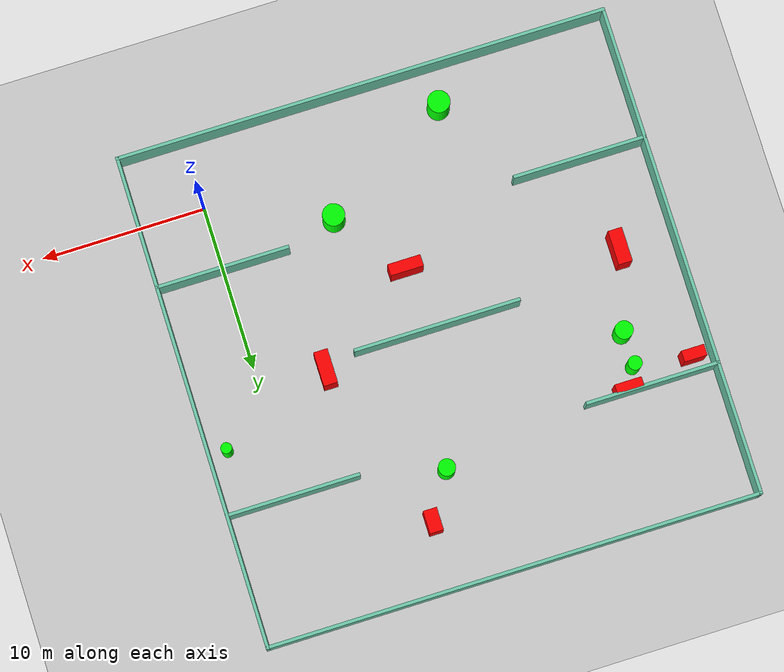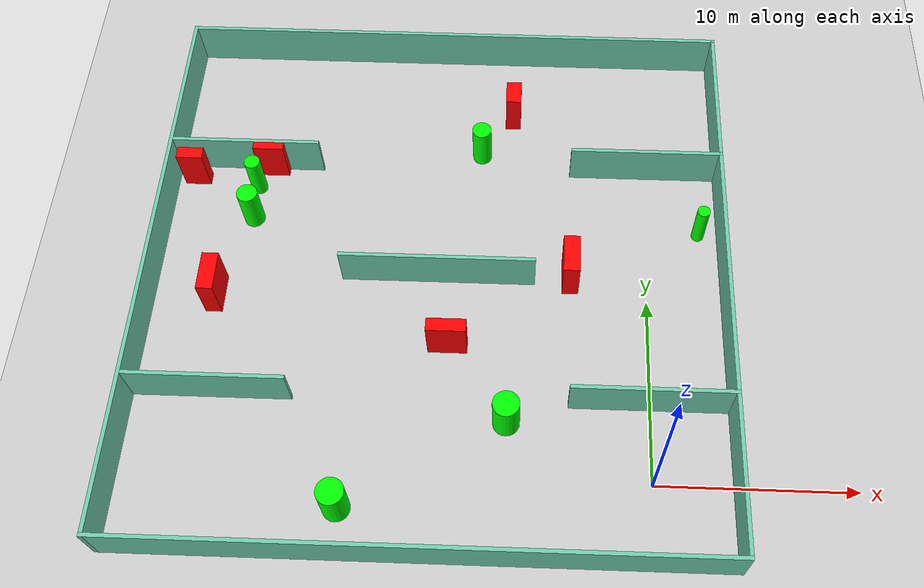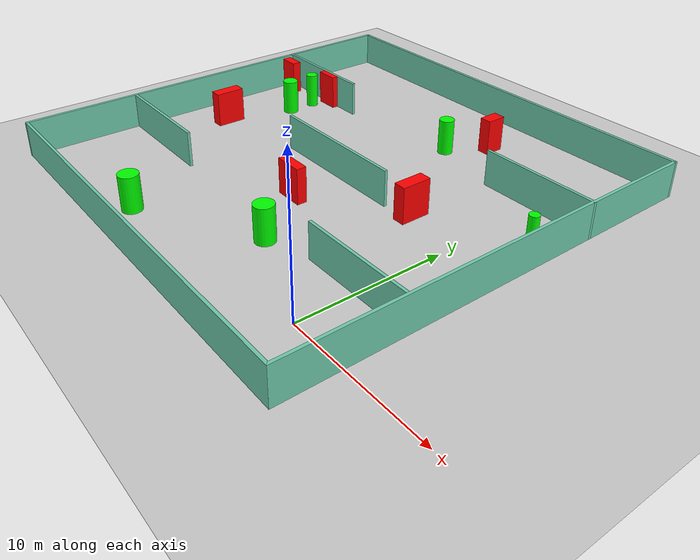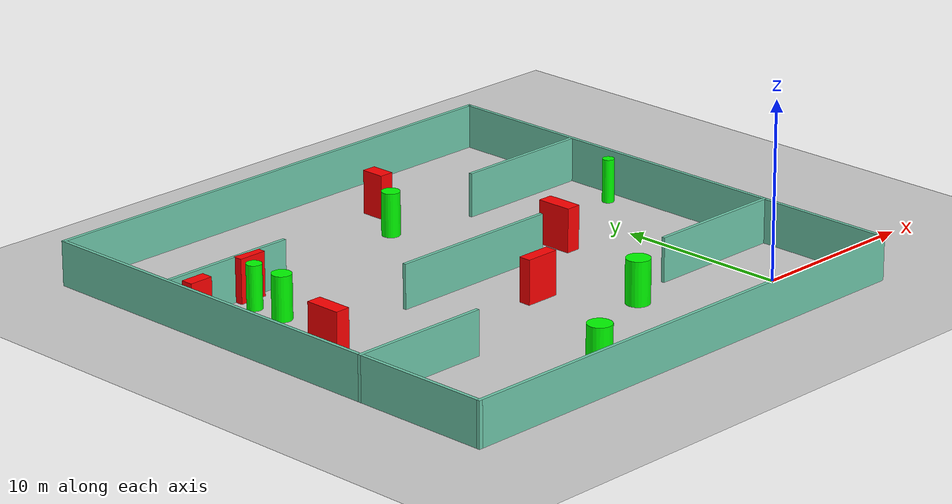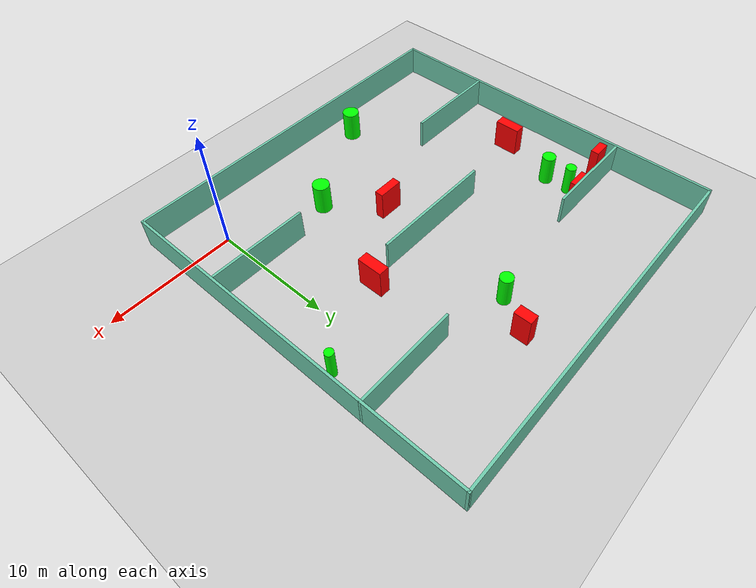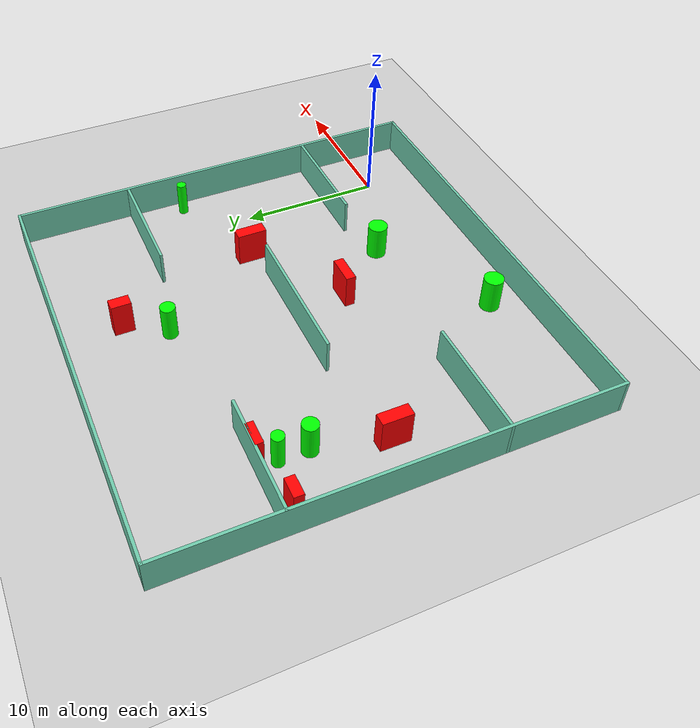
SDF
<sdf version="1.7">
 <world name="default">
  <light name="sun" type="directional">
   <pose>0 0 10 0 -0 0</pose>
   <diffuse>0.8 0.8 0.8 1</diffuse>
   <specular>0.2 0.2 0.2 1</specular>
   <attenuation>
    <range>1000</range>
    <constant>0.9</constant>
    <linear>0.01</linear>
    <quadratic>0.001</quadratic>
   </attenuation>
   <direction>-0.5 0.1 -0.9</direction>
   <spot><inner_angle>0</inner_angle><outer_angle>0</outer_angle><falloff>0</falloff></spot>
  </light>
  <model name="ground_plane">
   <static>1</static>
   <link name="link">
    <collision name="collision">
     <geometry><plane><normal>0 0 1</normal><size>100 100</size></plane></geometry>
     <surface>
      <contact><collide_bitmask>65535</collide_bitmask></contact>
      <friction><ode><mu>100</mu><mu2>50</mu2></ode></friction>
     </surface>
    </collision>
    <visual name="visual">
     <cast_shadows>0</cast_shadows>
     <geometry><plane><normal>0 0 1</normal><size>100 100</size></plane></geometry>
     <material>
      <script><uri>file://media/materials/scripts/gazebo.material</uri><name>Gazebo/Grey</name></script>
     </material>
    </visual>
   </link>
  </model>
  <gravity>0 0 -9.8</gravity>
  <magnetic_field>6e-06 2.3e-05 -4.2e-05</magnetic_field>
  <atmosphere type="adiabatic"/>
  <physics type="ode">
   <max_step_size>0.001</max_step_size>
   <real_time_factor>1</real_time_factor>
   <real_time_update_rate>1000</real_time_update_rate>
  </physics>
  <scene><ambient>0.4 0.4 0.4 1</ambient><background>0.7 0.7 0.7 1</background><shadows>1</shadows></scene>
  <spherical_coordinates>
   <surface_model>EARTH_WGS84</surface_model>
   <latitude_deg>0</latitude_deg>
   <longitude_deg>0</longitude_deg>
   <elevation>0</elevation>
   <heading_deg>0</heading_deg>
  </spherical_coordinates>
  <model name="my_base_walls">
   <link name="Wall_10">
    <collision name="Wall_10_Collision">
     <geometry><box><size>8.2 0.2 2.5</size></box></geometry>
     <pose>0 0 1.25 0 -0 0</pose>
    </collision>
    <visual name="Wall_10_Visual">
     <pose>0 0 1.25 0 -0 0</pose>
     <geometry><box><size>8.2 0.2 2.5</size></box></geometry>
     <material>
      <script><uri>file://media/materials/scripts/gazebo.material</uri><name>Gazebo/Grey</name></script>
      <ambient>0.435294 0.796078 0.67451 1</ambient>
     </material>
     <meta><layer>0</layer></meta>
    </visual>
    <pose>-11 -7 0 0 -0 0</pose>
   </link>
   <link name="Wall_12">
    <collision name="Wall_12_Collision">
     <geometry><box><size>8.2 0.2 2.5</size></box></geometry>
     <pose>0 0 1.25 0 -0 0</pose>
    </collision>
    <visual name="Wall_12_Visual">
     <pose>0 0 1.25 0 -0 0</pose>
     <geometry><box><size>8.2 0.2 2.5</size></box></geometry>
     <material>
      <script><uri>file://media/materials/scripts/gazebo.material</uri><name>Gazebo/Grey</name></script>
      <ambient>0.435294 0.796078 0.67451 1</ambient>
     </material>
     <meta><layer>0</layer></meta>
    </visual>
    <pose>-11 7 0 0 -0 0</pose>
   </link>
   <link name="Wall_14">
    <collision name="Wall_14_Collision">
     <geometry><box><size>8.2 0.2 2.5</size></box></geometry>
     <pose>0 0 1.25 0 -0 0</pose>
    </collision>
    <visual name="Wall_14_Visual">
     <pose>0 0 1.25 0 -0 0</pose>
     <geometry><box><size>8.2 0.2 2.5</size></box></geometry>
     <material>
      <script><uri>file://media/materials/scripts/gazebo.material</uri><name>Gazebo/Grey</name></script>
      <ambient>0.435294 0.796078 0.67451 1</ambient>
     </material>
     <meta><layer>0</layer></meta>
    </visual>
    <pose>11 7 0 0 -0 3.14159</pose>
   </link>
   <link name="Wall_16">
    <collision name="Wall_16_Collision">
     <geometry><box><size>10.2 0.2 2.5</size></box></geometry>
     <pose>0 0 1.25 0 -0 0</pose>
    </collision>
    <visual name="Wall_16_Visual">
     <pose>0 0 1.25 0 -0 0</pose>
     <geometry><box><size>10.2 0.2 2.5</size></box></geometry>
     <material>
      <script><uri>file://media/materials/scripts/gazebo.material</uri><name>Gazebo/Grey</name></script>
      <ambient>0.435294 0.796078 0.67451 1</ambient>
     </material>
     <meta><layer>0</layer></meta>
    </visual>
    <pose>0 0 0 0 -0 3.14159</pose>
   </link>
   <link name="Wall_2">
    <collision name="Wall_2_Collision">
     <geometry><box><size>30.2 0.2 2.5</size></box></geometry>
     <pose>0 0 1.25 0 -0 0</pose>
    </collision>
    <visual name="Wall_2_Visual">
     <pose>0 0 1.25 0 -0 0</pose>
     <geometry><box><size>30.2 0.2 2.5</size></box></geometry>
     <material>
      <script><uri>file://media/materials/scripts/gazebo.material</uri><name>Gazebo/Grey</name></script>
      <ambient>0.435294 0.796078 0.67451 1</ambient>
     </material>
     <meta><layer>0</layer></meta>
    </visual>
    <pose>0 -15 0 0 -0 3.14159</pose>
   </link>
   <link name="Wall_3">
    <collision name="Wall_3_Collision">
     <geometry><box><size>30.2 0.2 2.5</size></box></geometry>
     <pose>0 0 1.25 0 -0 0</pose>
    </collision>
    <visual name="Wall_3_Visual">
     <pose>0 0 1.25 0 -0 0</pose>
     <geometry><box><size>30.2 0.2 2.5</size></box></geometry>
     <material>
      <script><uri>file://media/materials/scripts/gazebo.material</uri><name>Gazebo/Grey</name></script>
      <ambient>0.435294 0.796078 0.67451 1</ambient>
     </material>
     <meta><layer>0</layer></meta>
    </visual>
    <pose>-15 0 0 0 -0 1.5708</pose>
   </link>
   <link name="Wall_4">
    <collision name="Wall_4_Collision">
     <geometry><box><size>30.2 0.2 2.5</size></box></geometry>
     <pose>0 0 1.25 0 -0 0</pose>
    </collision>
    <visual name="Wall_4_Visual">
     <pose>0 0 1.25 0 -0 0</pose>
     <geometry><box><size>30.2 0.2 2.5</size></box></geometry>
     <material>
      <script><uri>file://media/materials/scripts/gazebo.material</uri><name>Gazebo/Grey</name></script>
      <ambient>0.435294 0.796078 0.67451 1</ambient>
     </material>
     <meta><layer>0</layer></meta>
    </visual>
    <pose>0 15 0 0 -0 0</pose>
   </link>
   <link name="Wall_6">
    <collision name="Wall_6_Collision">
     <geometry><box><size>30.2 0.2 2.5</size></box></geometry>
     <pose>0 0 1.25 0 -0 0</pose>
    </collision>
    <visual name="Wall_6_Visual">
     <pose>0 0 1.25 0 -0 0</pose>
     <geometry><box><size>30.2 0.2 2.5</size></box></geometry>
     <material>
      <script><uri>file://media/materials/scripts/gazebo.material</uri><name>Gazebo/Grey</name></script>
      <ambient>0.435294 0.796078 0.67451 1</ambient>
     </material>
     <meta><layer>0</layer></meta>
    </visual>
    <pose>15 0 0 0 -0 1.5708</pose>
   </link>
   <link name="Wall_8">
    <collision name="Wall_8_Collision">
     <geometry><box><size>8.2 0.2 2.5</size></box></geometry>
     <pose>0 0 1.25 0 -0 0</pose>
    </collision>
    <visual name="Wall_8_Visual">
     <pose>0 0 1.25 0 -0 0</pose>
     <geometry><box><size>8.2 0.2 2.5</size></box></geometry>
     <material>
      <script><uri>file://media/materials/scripts/gazebo.material</uri><name>Gazebo/Grey</name></script>
      <ambient>0.435294 0.796078 0.67451 1</ambient>
     </material>
     <meta><layer>0</layer></meta>
    </visual>
    <pose>11 -7 0 0 -0 3.14159</pose>
   </link>
   <static>1</static>
   <pose>-11 11 0 0 -0 0</pose>
  </model>
  <model name="cylinder1">
   <static>1</static>
   <link name="link">
    <inertial>
     <mass>1</mass>
     <inertia><ixx>0.5</ixx><ixy>0</ixy><ixz>0</ixz><iyy>0.5</iyy><iyz>0</iyz><izz>1</izz></inertia>
    </inertial>
    <collision name="collision">
     <geometry><cylinder><radius>0.4279163242721992</radius><length>2.5</length></cylinder></geometry>
    </collision>
    <visual name="visual">
     <geometry><cylinder><radius>0.4279163242721992</radius><length>2.5</length></cylinder></geometry>
     <material>
      <ambient>0 1 0 1</ambient>
      <diffuse>0 1 0 1</diffuse>
      <specular>0.1 0.1 0.1 1</specular>
      <emissive>0 0 0 0</emissive>
     </material>
    </visual>
   </link>
   <pose>-21.35253113140922 16.586591165296106 1.25 0 0 0</pose>
  </model>
  <model name="cylinder2">
   <static>1</static>
   <link name="link">
    <inertial>
     <mass>1</mass>
     <inertia><ixx>0.5</ixx><ixy>0</ixy><ixz>0</ixz><iyy>0.5</iyy><iyz>0</iyz><izz>1</izz></inertia>
    </inertial>
    <collision name="collision">
     <geometry><cylinder><radius>0.6742862091936314</radius><length>2.5</length></cylinder></geometry>
    </collision>
    <visual name="visual">
     <geometry><cylinder><radius>0.6742862091936314</radius><length>2.5</length></cylinder></geometry>
     <material>
      <ambient>0 1 0 1</ambient>
      <diffuse>0 1 0 1</diffuse>
      <specular>0.1 0.1 0.1 1</specular>
      <emissive>0 0 0 0</emissive>
     </material>
    </visual>
   </link>
   <pose>-7.147395665633743 2.9897313642485965 1.25 0 0 0</pose>
  </model>
  <model name="cylinder3">
   <static>1</static>
   <link name="link">
    <inertial>
     <mass>1</mass>
     <inertia><ixx>0.5</ixx><ixy>0</ixy><ixz>0</ixz><iyy>0.5</iyy><iyz>0</iyz><izz>1</izz></inertia>
    </inertial>
    <collision name="collision">
     <geometry><cylinder><radius>0.6786292906437255</radius><length>2.5</length></cylinder></geometry>
    </collision>
    <visual name="visual">
     <geometry><cylinder><radius>0.6786292906437255</radius><length>2.5</length></cylinder></geometry>
     <material>
      <ambient>0 1 0 1</ambient>
      <diffuse>0 1 0 1</diffuse>
      <specular>0.1 0.1 0.1 1</specular>
      <emissive>0 0 0 0</emissive>
     </material>
    </visual>
   </link>
   <pose>-15.066832909136401 -1.6071368836273892 1.25 0 0 0</pose>
  </model>
  <model name="cylinder4">
   <static>1</static>
   <link name="link">
    <inertial>
     <mass>1</mass>
     <inertia><ixx>0.5</ixx><ixy>0</ixy><ixz>0</ixz><iyy>0.5</iyy><iyz>0</iyz><izz>1</izz></inertia>
    </inertial>
    <collision name="collision">
     <geometry><cylinder><radius>0.518452704318717</radius><length>2.5</length></cylinder></geometry>
    </collision>
    <visual name="visual">
     <geometry><cylinder><radius>0.518452704318717</radius><length>2.5</length></cylinder></geometry>
     <material>
      <ambient>0 1 0 1</ambient>
      <diffuse>0 1 0 1</diffuse>
      <specular>0.1 0.1 0.1 1</specular>
      <emissive>0 0 0 0</emissive>
     </material>
    </visual>
   </link>
   <pose>-9.032937028806995 19.142565184896412 1.25 0 0 0</pose>
  </model>
  <model name="cylinder5">
   <static>1</static>
   <link name="link">
    <inertial>
     <mass>1</mass>
     <inertia><ixx>0.5</ixx><ixy>0</ixy><ixz>0</ixz><iyy>0.5</iyy><iyz>0</iyz><izz>1</izz></inertia>
    </inertial>
    <collision name="collision">
     <geometry><cylinder><radius>0.33603788637087717</radius><length>2.5</length></cylinder></geometry>
    </collision>
    <visual name="visual">
     <geometry><cylinder><radius>0.33603788637087717</radius><length>2.5</length></cylinder></geometry>
     <material>
      <ambient>0 1 0 1</ambient>
      <diffuse>0 1 0 1</diffuse>
      <specular>0.1 0.1 0.1 1</specular>
      <emissive>0 0 0 0</emissive>
     </material>
    </visual>
   </link>
   <pose>2.8810546068873535 14.241385368887205 1.25 0 0 0</pose>
  </model>
  <model name="cylinder6">
   <static>1</static>
   <link name="link">
    <inertial>
     <mass>1</mass>
     <inertia><ixx>0.5</ixx><ixy>0</ixy><ixz>0</ixz><iyy>0.5</iyy><iyz>0</iyz><izz>1</izz></inertia>
    </inertial>
    <collision name="collision">
     <geometry><cylinder><radius>0.5503672162998452</radius><length>2.5</length></cylinder></geometry>
    </collision>
    <visual name="visual">
     <geometry><cylinder><radius>0.5503672162998452</radius><length>2.5</length></cylinder></geometry>
     <material>
      <ambient>0 1 0 1</ambient>
      <diffuse>0 1 0 1</diffuse>
      <specular>0.1 0.1 0.1 1</specular>
      <emissive>0 0 0 0</emissive>
     </material>
    </visual>
   </link>
   <pose>-21.329776522032432 14.550804185224191 1.25 0 0 0</pose>
  </model>
  <model name="box1">
   <static>1</static>
   <link name="link">
    <inertial>
     <mass>1</mass>
     <inertia><ixx>0.083</ixx><ixy>0</ixy><ixz>0</ixz><iyy>0.083</iyy><iyz>0</iyz><izz>0.083</izz></inertia>
    </inertial>
    <collision name="collision">
     <geometry><box><size>0.8326003036056864 1.3754682263648303 2.5</size></box></geometry>
    </collision>
    <visual name="visual">
     <geometry><box><size>0.8326003036056864 1.3754682263648303 2.5</size></box></geometry>
     <material>
      <ambient>1 0 0 1</ambient>
      <diffuse>1 0 0 1</diffuse>
      <specular>0.1 0.1 0.1 1</specular>
      <emissive>0 0 0 0</emissive>
     </material>
    </visual>
    <sensor name="my_contact" type="contact">
     <contact><collision>box_collision</collision><topic>__default_topic__</topic></contact>
    </sensor>
   </link>
   <pose>-7.351956943456303 21.84931459877558 1.25 0 0 0</pose>
  </model>
  <model name="box2">
   <static>1</static>
   <link name="link">
    <inertial>
     <mass>1</mass>
     <inertia><ixx>0.083</ixx><ixy>0</ixy><ixz>0</ixz><iyy>0.083</iyy><iyz>0</iyz><izz>0.083</izz></inertia>
    </inertial>
    <collision name="collision">
     <geometry><box><size>0.85750985619964 2.0697813254842874 2.5</size></box></geometry>
    </collision>
    <visual name="visual">
     <geometry><box><size>0.85750985619964 2.0697813254842874 2.5</size></box></geometry>
     <material>
      <ambient>1 0 0 1</ambient>
      <diffuse>1 0 0 1</diffuse>
      <specular>0.1 0.1 0.1 1</specular>
      <emissive>0 0 0 0</emissive>
     </material>
    </visual>
    <sensor name="my_contact" type="contact">
     <contact><collision>box_collision</collision><topic>__default_topic__</topic></contact>
    </sensor>
   </link>
   <pose>-4.031006698580018 11.453818616128014 1.25 0 0 0</pose>
  </model>
  <model name="box3">
   <static>1</static>
   <link name="link">
    <inertial>
     <mass>1</mass>
     <inertia><ixx>0.083</ixx><ixy>0</ixy><ixz>0</ixz><iyy>0.083</iyy><iyz>0</iyz><izz>0.083</izz></inertia>
    </inertial>
    <collision name="collision">
     <geometry><box><size>1.3947740095834087 0.6741441010283709 2.5</size></box></geometry>
    </collision>
    <visual name="visual">
     <geometry><box><size>1.3947740095834087 0.6741441010283709 2.5</size></box></geometry>
     <material>
      <ambient>1 0 0 1</ambient>
      <diffuse>1 0 0 1</diffuse>
      <specular>0.1 0.1 0.1 1</specular>
      <emissive>0 0 0 0</emissive>
     </material>
    </visual>
    <sensor name="my_contact" type="contact">
     <contact><collision>box_collision</collision><topic>__default_topic__</topic></contact>
    </sensor>
   </link>
   <pose>-24.82177310732236 17.068198239126772 1.25 0 0 0</pose>
  </model>
  <model name="box4">
   <static>1</static>
   <link name="link">
    <inertial>
     <mass>1</mass>
     <inertia><ixx>0.083</ixx><ixy>0</ixy><ixz>0</ixz><iyy>0.083</iyy><iyz>0</iyz><izz>0.083</izz></inertia>
    </inertial>
    <collision name="collision">
     <geometry><box><size>0.8557270297014448 2.0820296857536533 2.5</size></box></geometry>
    </collision>
    <visual name="visual">
     <geometry><box><size>0.8557270297014448 2.0820296857536533 2.5</size></box></geometry>
     <material>
      <ambient>1 0 0 1</ambient>
      <diffuse>1 0 0 1</diffuse>
      <specular>0.1 0.1 0.1 1</specular>
      <emissive>0 0 0 0</emissive>
     </material>
    </visual>
    <sensor name="my_contact" type="contact">
     <contact><collision>box_collision</collision><topic>__default_topic__</topic></contact>
    </sensor>
   </link>
   <pose>-22.63203106379487 9.76716782152304 1.25 0 0 0</pose>
  </model>
  <model name="box5">
   <static>1</static>
   <link name="link">
    <inertial>
     <mass>1</mass>
     <inertia><ixx>0.083</ixx><ixy>0</ixy><ixz>0</ixz><iyy>0.083</iyy><iyz>0</iyz><izz>0.083</izz></inertia>
    </inertial>
    <collision name="collision">
     <geometry><box><size>2.015861859233209 0.693735184108965 2.5</size></box></geometry>
    </collision>
    <visual name="visual">
     <geometry><box><size>2.015861859233209 0.693735184108965 2.5</size></box></geometry>
     <material>
      <ambient>1 0 0 1</ambient>
      <diffuse>1 0 0 1</diffuse>
      <specular>0.1 0.1 0.1 1</specular>
      <emissive>0 0 0 0</emissive>
     </material>
    </visual>
    <sensor name="my_contact" type="contact">
     <contact><collision>box_collision</collision><topic>__default_topic__</topic></contact>
    </sensor>
   </link>
   <pose>-10.28511553314473 7.095509950435233 1.25 0 0 0</pose>
  </model>
  <model name="box6">
   <static>1</static>
   <link name="link">
    <inertial>
     <mass>1</mass>
     <inertia><ixx>0.083</ixx><ixy>0</ixy><ixz>0</ixz><iyy>0.083</iyy><iyz>0</iyz><izz>0.083</izz></inertia>
    </inertial>
    <collision name="collision">
     <geometry><box><size>1.6484296385337893 0.5415179348463989 2.5</size></box></geometry>
    </collision>
    <visual name="visual">
     <geometry><box><size>1.6484296385337893 0.5415179348463989 2.5</size></box></geometry>
     <material>
      <ambient>1 0 0 1</ambient>
      <diffuse>1 0 0 1</diffuse>
      <specular>0.1 0.1 0.1 1</specular>
      <emissive>0 0 0 0</emissive>
     </material>
    </visual>
    <sensor name="my_contact" type="contact">
     <contact><collision>box_collision</collision><topic>__default_topic__</topic></contact>
    </sensor>
   </link>
   <pose>-20.632450133051567 17.72914008030005 1.25 0 0 0</pose>
  </model>
 </world>
</sdf>
